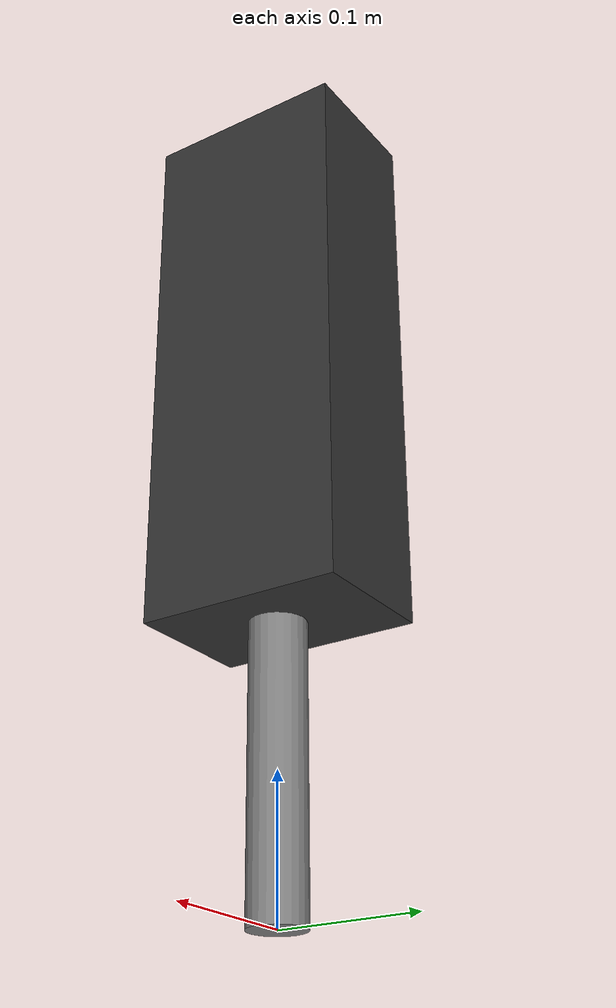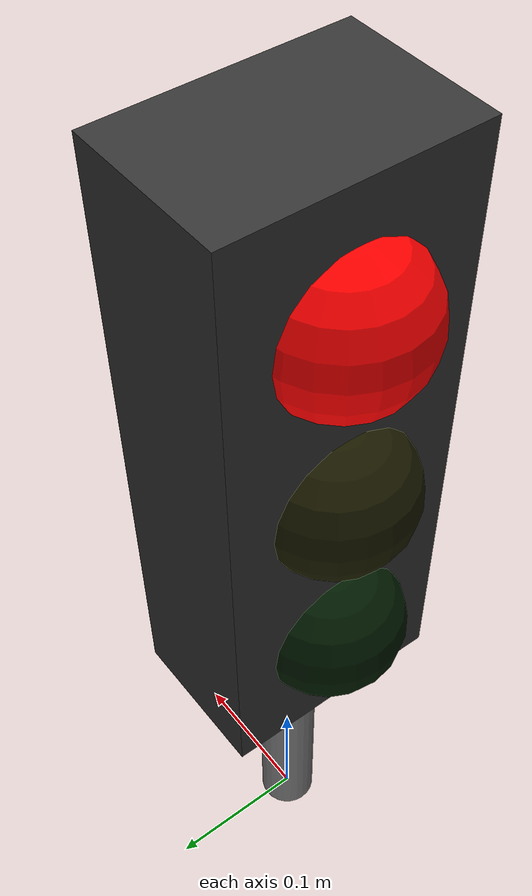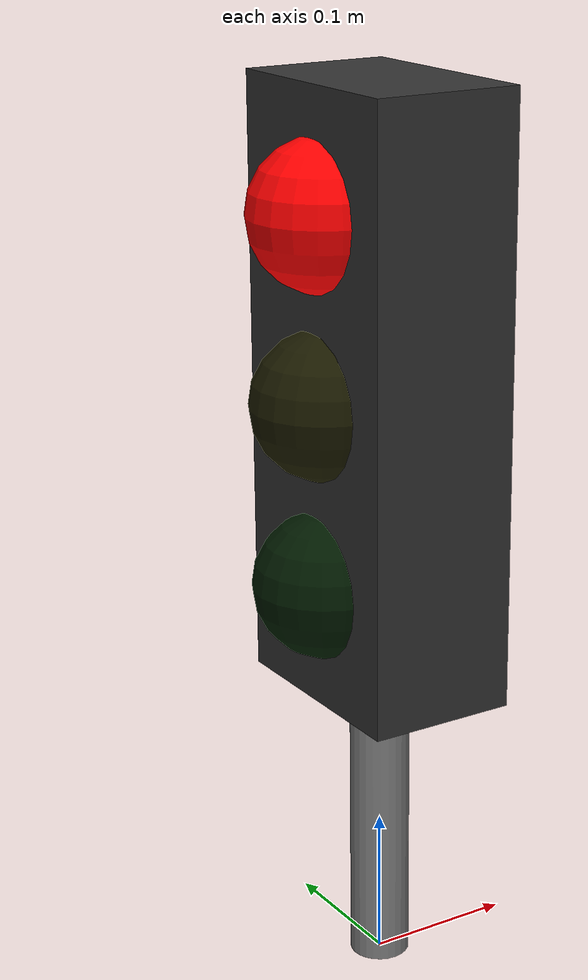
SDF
<?xml version="1.0" ?>
<sdf version="1.6">
  <model name="traffic_light">
    <static>true</static>

    <link name="link">
      <pose>0 0 0 0 0 0</pose>

      <visual name="pole">
        <geometry>
          <cylinder>
            <radius>0.02</radius>
            <length>0.4</length>
          </cylinder>
        </geometry>
        <material>
          <ambient>0.5 0.5 0.5 1</ambient>
          <diffuse>0.5 0.5 0.5 1</diffuse>
        </material>
        <pose>0 0 0.2 0 0 0</pose>
      </visual>

      <visual name="light_box">
        <geometry>
          <box>
            <size>0.1 0.15 0.4</size>
          </box>
        </geometry>
        <material>
          <ambient>0.2 0.2 0.2 1</ambient>
          <diffuse>0.2 0.2 0.2 1</diffuse>
        </material>
        <pose>0 0 0.4 0 0 0</pose>
      </visual>

      <visual name="red_light">
        <geometry>
          <sphere>
            <radius>0.049</radius>
          </sphere>
        </geometry>
        <material>
          <emissive>1 0 0 1</emissive>
          <ambient>1 0 0 1</ambient>
          <diffuse>1 0 0 1</diffuse>
        </material>
        <pose>-0.04 0 0.52 0 0 0</pose>
      </visual>

      <visual name="yellow_light">
        <geometry>
          <sphere>
            <radius>0.049</radius>
          </sphere>
        </geometry>
        <material>
          <ambient>0.1 0.1 0 1</ambient>
          <diffuse>0.1 0.1 0 1</diffuse>
        </material>
        <pose>-0.04 0 0.4 0 0 0</pose>
      </visual>

      <visual name="green_light">
        <geometry>
          <sphere>
            <radius>0.049</radius>
          </sphere>
        </geometry>
        <material>
          <ambient>0 0.1 0 1</ambient>
          <diffuse>0 0.1 0 1</diffuse>
        </material>
        <pose>-0.04 0 0.28 0 0 0</pose>
      </visual>
    </link>
  </model>
</sdf>
